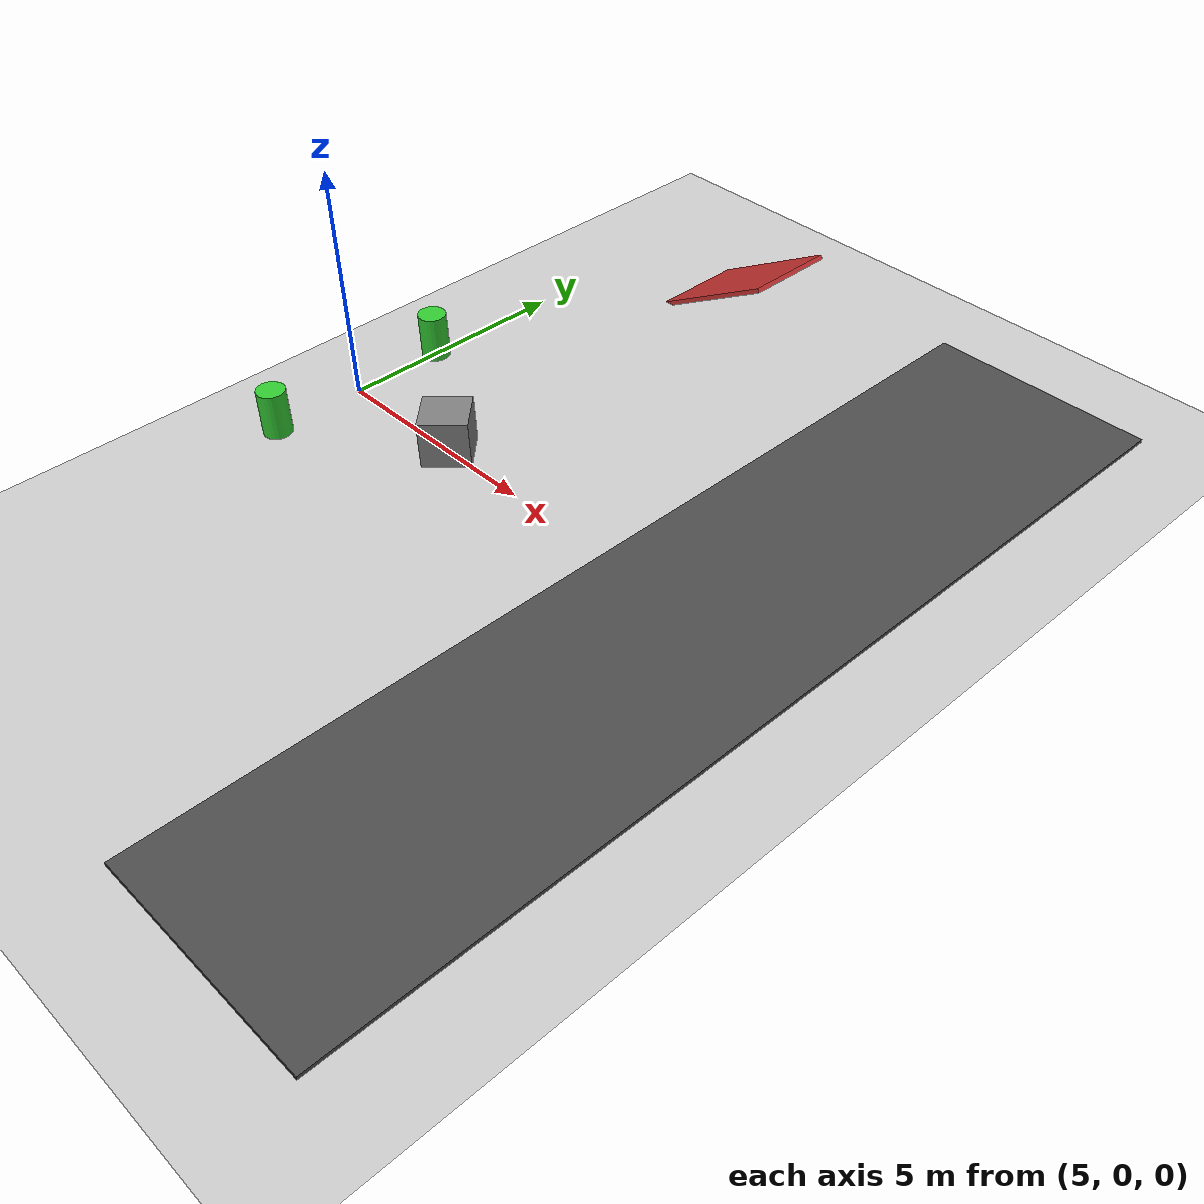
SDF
<?xml version="1.0" ?>
<sdf version="1.8">
  <world name="rough_terrain">

    <!-- Physics and Plugins -->
    <plugin filename="gz-sim-physics-system" name="gz::sim::systems::Physics" />
    <plugin filename="gz-sim-user-commands-system" name="gz::sim::systems::UserCommands" />
    <plugin filename="gz-sim-scene-broadcaster-system" name="gz::sim::systems::SceneBroadcaster" />
    <plugin filename="gz-sim-sensors-system" name="gz::sim::systems::Sensors">
      <render_engine>ogre2</render_engine>
    </plugin>
    <plugin filename="gz-sim-imu-system" name="gz::sim::systems::Imu" />
    <plugin filename="gz-sim-navsat-system" name="gz::sim::systems::NavSat" />

    <!-- Physics Settings -->
    <physics name="1ms" type="ignored">
      <max_step_size>0.001</max_step_size>
      <real_time_factor>1.0</real_time_factor>
    </physics>

    <!-- Sun -->
    <light type="directional" name="sun">
      <cast_shadows>true</cast_shadows>
      <pose>0 0 10 0 0 0</pose>
      <diffuse>0.8 0.8 0.8 1</diffuse>
      <specular>0.2 0.2 0.2 1</specular>
      <direction>-0.5 0.1 -0.9</direction>
    </light>

    <!-- Ground Plane (Safe Area) -->
    <model name="ground_plane">
      <static>true</static>
      <link name="link">
        <collision name="collision">
          <geometry><plane><normal>0 0 1</normal><size>100 100</size></plane></geometry>
        </collision>
        <visual name="visual">
          <geometry><plane><normal>0 0 1</normal><size>100 100</size></plane></geometry>
          <material><ambient>0.8 0.8 0.8 1</ambient><diffuse>0.8 0.8 0.8 1</diffuse></material>
        </visual>
      </link>
    </model>

    <!-- THE DITCH (Negative Obstacle) -->
    <model name="ditch_platform">
      <static>true</static>
      <pose>15 0 0 0 0 0</pose>
      <link name="link">
        <collision name="col">
          <geometry><box><size>5 20 0.1</size></box></geometry>
        </collision>
        <visual name="vis">
          <geometry><box><size>5 20 0.1</size></box></geometry>
          <material><ambient>0.3 0.3 0.3 1</ambient><diffuse>0.3 0.3 0.3 1</diffuse></material>
        </visual>
      </link>
    </model>

    <!-- THE RAMP (Slope Obstacle) -->
    <model name="steep_ramp">
      <static>true</static>
      <pose>8 8 0.5 0 -0.5 0</pose> <!-- ~28 degrees pitch -->
      <link name="link">
        <collision name="col">
          <geometry><box><size>4 2 0.1</size></box></geometry>
        </collision>
        <visual name="vis">
          <geometry><box><size>4 2 0.1</size></box></geometry>
          <material><ambient>0.8 0.2 0.2 1</ambient><diffuse>0.8 0.2 0.2 1</diffuse></material>
        </visual>
      </link>
    </model>

    <!-- OBSTACLE 1: Cylinder (Tree/Pole) -->
    <model name="cylinder_obstacle_1">
      <static>true</static>
      <pose>5 2 0.5 0 0 0</pose>
      <link name="link">
        <collision name="col">
          <geometry><cylinder><radius>0.3</radius><length>1.0</length></cylinder></geometry>
        </collision>
        <visual name="vis">
          <geometry><cylinder><radius>0.3</radius><length>1.0</length></cylinder></geometry>
          <material><ambient>0.2 0.8 0.2 1</ambient><diffuse>0.2 0.8 0.2 1</diffuse></material>
        </visual>
      </link>
    </model>

    <!-- OBSTACLE 2: Cylinder (Tree/Pole) -->
    <model name="cylinder_obstacle_2">
      <static>true</static>
      <pose>5 -2 0.5 0 0 0</pose>
      <link name="link">
        <collision name="col">
          <geometry><cylinder><radius>0.3</radius><length>1.0</length></cylinder></geometry>
        </collision>
        <visual name="vis">
          <geometry><cylinder><radius>0.3</radius><length>1.0</length></cylinder></geometry>
          <material><ambient>0.2 0.8 0.2 1</ambient><diffuse>0.2 0.8 0.2 1</diffuse></material>
        </visual>
      </link>
    </model>

    <!-- OBSTACLE 3: Box (Rock/Wall) -->
    <model name="box_obstacle">
      <static>true</static>
      <pose>8 0 0.5 0 0 0.785</pose> <!-- Rotated 45 deg -->
      <link name="link">
        <collision name="col">
          <geometry><box><size>1.0 1.0 1.0</size></box></geometry>
        </collision>
        <visual name="vis">
          <geometry><box><size>1.0 1.0 1.0</size></box></geometry>
          <material><ambient>0.5 0.5 0.5 1</ambient><diffuse>0.5 0.5 0.5 1</diffuse></material>
        </visual>
      </link>
    </model>

  </world>
</sdf>
